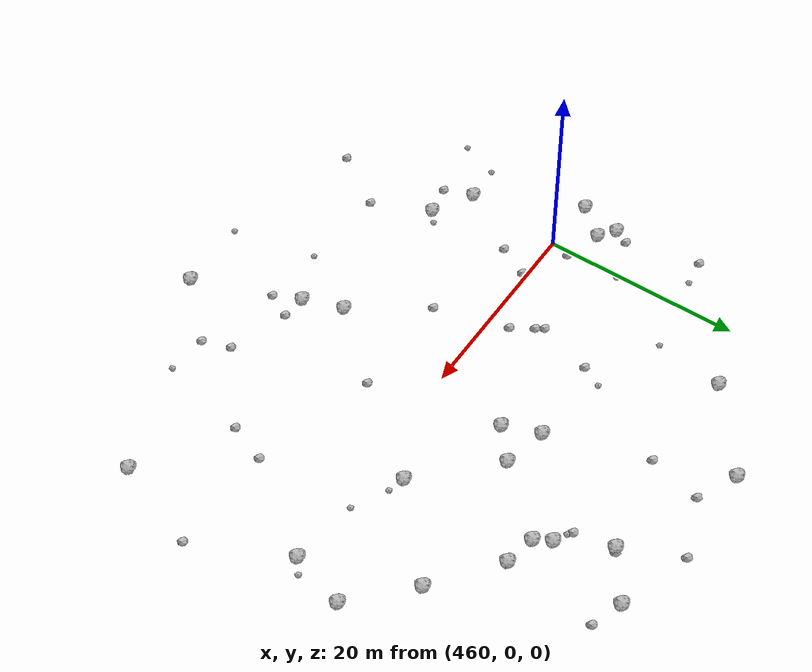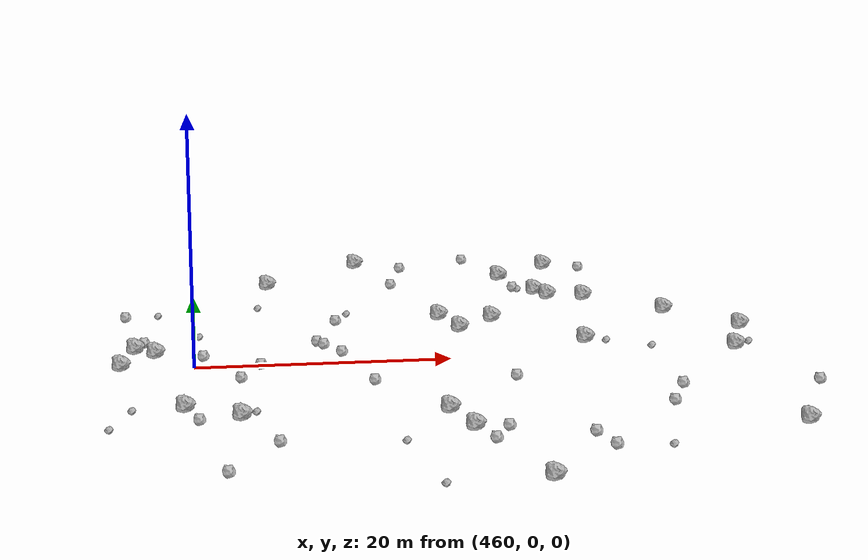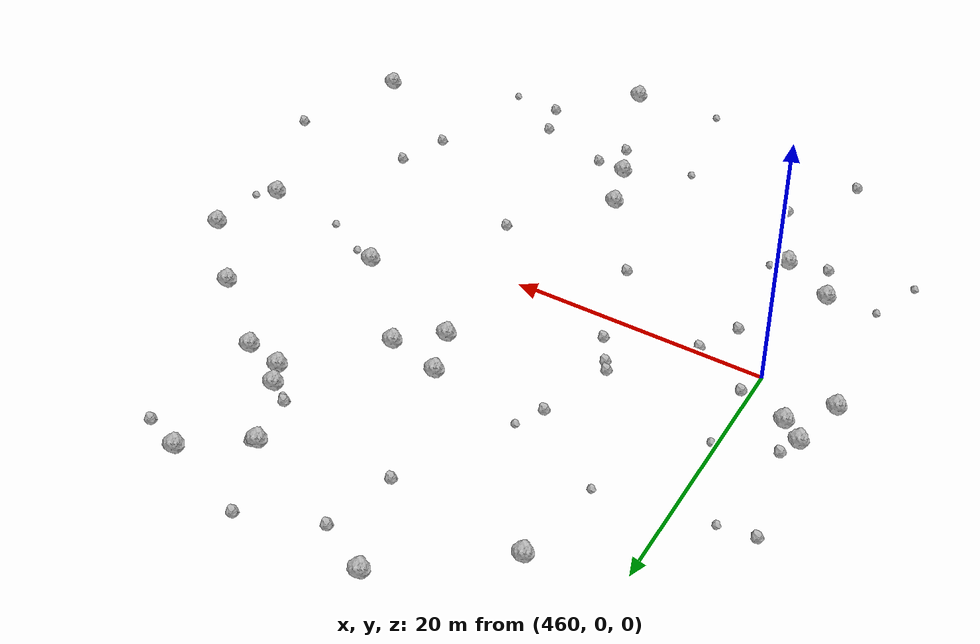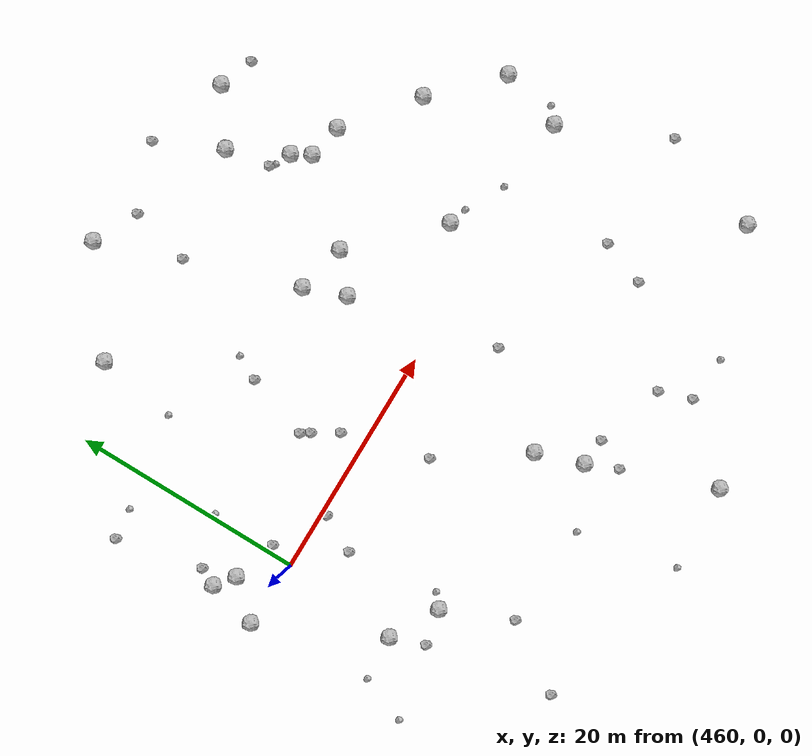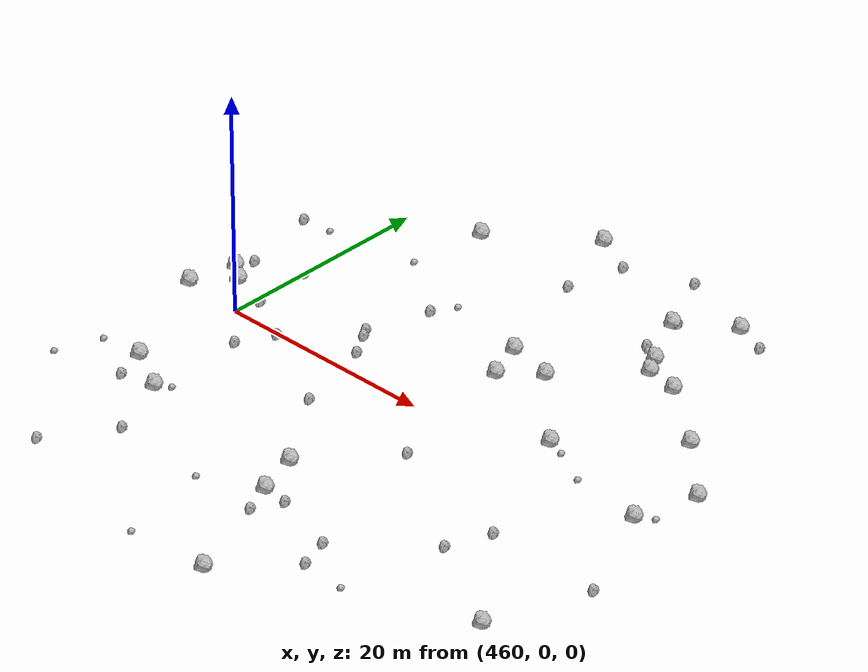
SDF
<sdf version="1.6">
 <world name="default">
  <include><uri>model://sun</uri></include>
  <model name="rock1_12_4">
   <include><uri>model://rock1</uri><pose>454.3809208124251 0.31427724930883016 0.5 0 0 0</pose></include>
  </model>
  <model name="rock1_12_5">
   <include><uri>model://rock1</uri><pose>474.5246256446365 28.12633724531446 0.5 0 0 0</pose></include>
  </model>
  <model name="rock1_12_6">
   <include><uri>model://rock1</uri><pose>491.32070660975194 25.928818701147783 0.5 0 0 0</pose></include>
  </model>
  <model name="rock1_12_7">
   <include><uri>model://rock1</uri><pose>479.89381019243683 -16.440197595281578 0.5 0 0 0</pose></include>
  </model>
  <model name="rock1_12_8">
   <include><uri>model://rock1</uri><pose>480.2829514863956 11.18286804723337 0.5 0 0 0</pose></include>
  </model>
  <model name="rock1_12_9">
   <include><uri>model://rock1</uri><pose>491.304450399396 3.466454788104407 0.5 0 0 0</pose></include>
  </model>
  <model name="rock1_12_10">
   <include><uri>model://rock1</uri><pose>489.3158724761838 17.895468755717246 0.5 0 0 0</pose></include>
  </model>
  <model name="rock1_12_11">
   <include><uri>model://rock1</uri><pose>484.58985000978157 10.17183681827575 0.5 0 0 0</pose></include>
  </model>
  <model name="rock1_12_12">
   <include><uri>model://rock1</uri><pose>478.5410654613605 -12.413326687288706 0.5 0 0 0</pose></include>
  </model>
  <model name="rock1_12_13">
   <include><uri>model://rock1</uri><pose>463.38090685022564 -12.348530105248152 0.5 0 0 0</pose></include>
  </model>
  <model name="rock1_12_14">
   <include><uri>model://rock1</uri><pose>466.4639436641768 21.995506629704686 0.5 0 0 0</pose></include>
  </model>
  <model name="rock1_12_15">
   <include><uri>model://rock1</uri><pose>481.61720766961906 7.604967619191356 0.5 0 0 0</pose></include>
  </model>
  <model name="rock1_12_16">
   <include><uri>model://rock1</uri><pose>457.0015762061508 3.3085848743802586 0.5 0 0 0</pose></include>
  </model>
  <model name="rock1_12_17">
   <include><uri>model://rock1</uri><pose>486.84924369954683 22.750551510595216 0.5 0 0 0</pose></include>
  </model>
  <model name="rock1_12_18">
   <include><uri>model://rock1</uri><pose>504.5560027029798 5.798145336975139 0.5 0 0 0</pose></include>
  </model>
  <model name="rock1_12_19">
   <include><uri>model://rock1</uri><pose>459.30432920039044 -10.04749857788659 0.5 0 0 0</pose></include>
  </model>
  <model name="rock1_12_20">
   <include><uri>model://rock1</uri><pose>504.0467868347223 -17.802977085102 0.5 0 0 0</pose></include>
  </model>
  <model name="rock1_12_21">
   <include><uri>model://rock1</uri><pose>455.4012669077167 4.565167693854725 0.5 0 0 0</pose></include>
  </model>
  <model name="rock1_12_22">
   <include><uri>model://rock1</uri><pose>493.2311735829984 15.690227630259457 0.5 0 0 0</pose></include>
  </model>
  <model name="rock1_12_23">
   <include><uri>model://rock1</uri><pose>502.92061567741 0.3171874317564729 0.5 0 0 0</pose></include>
  </model>
  <model name="rock1_12_24">
   <include><uri>model://rock1</uri><pose>490.2119111610319 16.313960631065513 0.5 0 0 0</pose></include>
  </model>
  <model name="rock1_12_25">
   <include><uri>model://rock1</uri><pose>499.26342408374285 10.93572084411634 0.5 0 0 0</pose></include>
  </model>
  <model name="rock1_12_26">
   <include><uri>model://rock1</uri><pose>483.9398970930651 -27.046707111960238 0.5 0 0 0</pose></include>
  </model>
  <model name="rock2_12_0">
   <include><uri>model://rock2</uri><pose>495.2080826354667 -12.527113000223451 0.3 0 0 0</pose></include>
  </model>
  <model name="rock2_12_1">
   <include><uri>model://rock2</uri><pose>460.28865925639616 -12.967733329880609 0.3 0 0 0</pose></include>
  </model>
  <model name="rock2_12_2">
   <include><uri>model://rock2</uri><pose>487.1721179515912 23.01627641578674 0.3 0 0 0</pose></include>
  </model>
  <model name="rock2_12_3">
   <include><uri>model://rock2</uri><pose>494.3072156544298 24.85005070448802 0.3 0 0 0</pose></include>
  </model>
  <model name="rock2_12_4">
   <include><uri>model://rock2</uri><pose>462.1546523609008 -23.86890965152727 0.3 0 0 0</pose></include>
  </model>
  <model name="rock2_12_5">
   <include><uri>model://rock2</uri><pose>473.5870843950934 -5.261897734820135 0.3 0 0 0</pose></include>
  </model>
  <model name="rock2_12_6">
   <include><uri>model://rock2</uri><pose>454.4172819664357 13.499104827126523 0.3 0 0 0</pose></include>
  </model>
  <model name="rock2_12_7">
   <include><uri>model://rock2</uri><pose>460.7099712616232 2.125450606267748 0.3 0 0 0</pose></include>
  </model>
  <model name="rock2_12_8">
   <include><uri>model://rock2</uri><pose>489.16569965877824 -21.398530857414162 0.3 0 0 0</pose></include>
  </model>
  <model name="rock2_12_9">
   <include><uri>model://rock2</uri><pose>470.27191222759797 4.27585241265443 0.3 0 0 0</pose></include>
  </model>
  <model name="rock2_12_10">
   <include><uri>model://rock2</uri><pose>481.00121544009 -19.159814104266992 0.3 0 0 0</pose></include>
  </model>
  <model name="rock2_12_11">
   <include><uri>model://rock2</uri><pose>496.65105653079115 -8.665671118693176 0.3 0 0 0</pose></include>
  </model>
  <model name="rock2_12_12">
   <include><uri>model://rock2</uri><pose>478.3715070683162 26.2440408975233 0.3 0 0 0</pose></include>
  </model>
  <model name="rock2_12_13">
   <include><uri>model://rock2</uri><pose>471.5730723499725 2.158445566066156 0.3 0 0 0</pose></include>
  </model>
  <model name="rock2_12_14">
   <include><uri>model://rock2</uri><pose>484.42228655567084 -5.379422415107978 0.3 0 0 0</pose></include>
  </model>
  <model name="rock2_12_15">
   <include><uri>model://rock2</uri><pose>469.77168312100343 5.046842976500628 0.3 0 0 0</pose></include>
  </model>
  <model name="rock2_12_16">
   <include><uri>model://rock2</uri><pose>482.269639997362 -16.66003273030112 0.3 0 0 0</pose></include>
  </model>
  <model name="rock2_12_17">
   <include><uri>model://rock2</uri><pose>487.5404057573925 18.928173474598992 0.3 0 0 0</pose></include>
  </model>
  <model name="rock2_12_18">
   <include><uri>model://rock2</uri><pose>465.1356585882134 -0.41391668961139416 0.3 0 0 0</pose></include>
  </model>
  <model name="rock2_12_19">
   <include><uri>model://rock2</uri><pose>477.1007980164278 21.01021908722054 0.3 0 0 0</pose></include>
  </model>
  <model name="rock2_12_20">
   <include><uri>model://rock2</uri><pose>488.2238925734495 -18.589723241990747 0.3 0 0 0</pose></include>
  </model>
  <model name="rock2_12_21">
   <include><uri>model://rock2</uri><pose>463.51270091172006 -3.557452605090809 0.3 0 0 0</pose></include>
  </model>
  <model name="rock2_12_22">
   <include><uri>model://rock2</uri><pose>456.06558111973845 6.110526043805102 0.3 0 0 0</pose></include>
  </model>
  <model name="rock2_12_23">
   <include><uri>model://rock2</uri><pose>507.18608856285925 -8.934691490082468 0.3 0 0 0</pose></include>
  </model>
  <model name="rock2_12_24">
   <include><uri>model://rock2</uri><pose>471.60471819430364 10.604145023907833 0.3 0 0 0</pose></include>
  </model>
  <model name="rock2_12_25">
   <include><uri>model://rock2</uri><pose>465.85547463639426 -18.22203643876341 0.3 0 0 0</pose></include>
  </model>
  <model name="rock2_12_26">
   <include><uri>model://rock2</uri><pose>484.21734783402576 28.436089294674048 0.3 0 0 0</pose></include>
  </model>
  <model name="rock3_12_0">
   <include><uri>model://rock3</uri><pose>504.16425350803826 1.3534446360219583 0.2 0 0 0</pose></include>
  </model>
  <model name="rock3_12_1">
   <include><uri>model://rock3</uri><pose>460.4029993592428 7.510443119770294 0.2 0 0 0</pose></include>
  </model>
  <model name="rock3_12_2">
   <include><uri>model://rock3</uri><pose>455.38969612527865 -10.316101017954217 0.2 0 0 0</pose></include>
  </model>
  <model name="rock3_12_3">
   <include><uri>model://rock3</uri><pose>472.6451704486661 12.654186684566376 0.2 0 0 0</pose></include>
  </model>
  <model name="rock3_12_4">
   <include><uri>model://rock3</uri><pose>496.23991689792257 1.1661643079941548 0.2 0 0 0</pose></include>
  </model>
  <model name="rock3_12_5">
   <include><uri>model://rock3</uri><pose>465.3537228362649 15.137864508434262 0.2 0 0 0</pose></include>
  </model>
  <model name="rock3_12_6">
   <include><uri>model://rock3</uri><pose>493.1536138953911 -21.740703231465623 0.2 0 0 0</pose></include>
  </model>
  <model name="rock3_12_7">
   <include><uri>model://rock3</uri><pose>476.4719116791864 -27.480137096409656 0.2 0 0 0</pose></include>
  </model>
  <model name="rock3_12_8">
   <include><uri>model://rock3</uri><pose>492.8719499149423 2.9596657035988443 0.2 0 0 0</pose></include>
  </model>
  <model name="rock3_12_9">
   <include><uri>model://rock3</uri><pose>457.0549780406503 13.786264732356202 0.2 0 0 0</pose></include>
  </model>
  <model name="rock3_12_10">
   <include><uri>model://rock3</uri><pose>474.6905660689301 -18.862520315015814 0.2 0 0 0</pose></include>
  </model>
  <model name="rock3_12_11">
   <include><uri>model://rock3</uri><pose>464.4183722754416 -11.471841299393638 0.2 0 0 0</pose></include>
  </model>
  <model name="rock3_12_12">
   <include><uri>model://rock3</uri><pose>453.862316390949 -14.30470476582768 0.2 0 0 0</pose></include>
  </model>
  <model name="rock3_12_13">
   <include><uri>model://rock3</uri><pose>487.9131910153273 18.522128577859057 0.2 0 0 0</pose></include>
  </model>
 </world>
</sdf>
